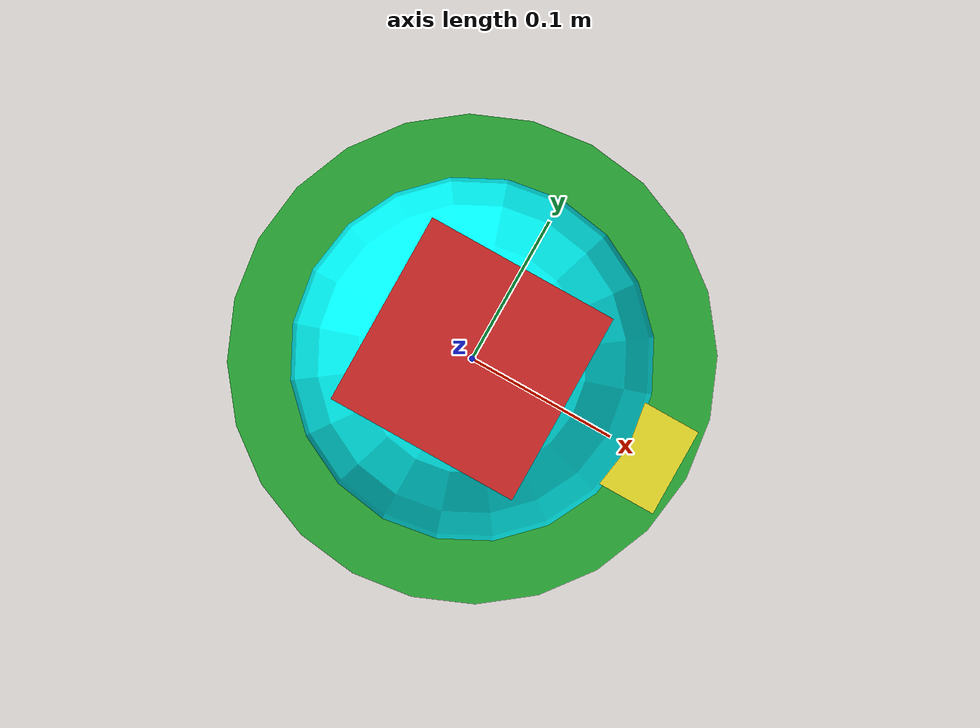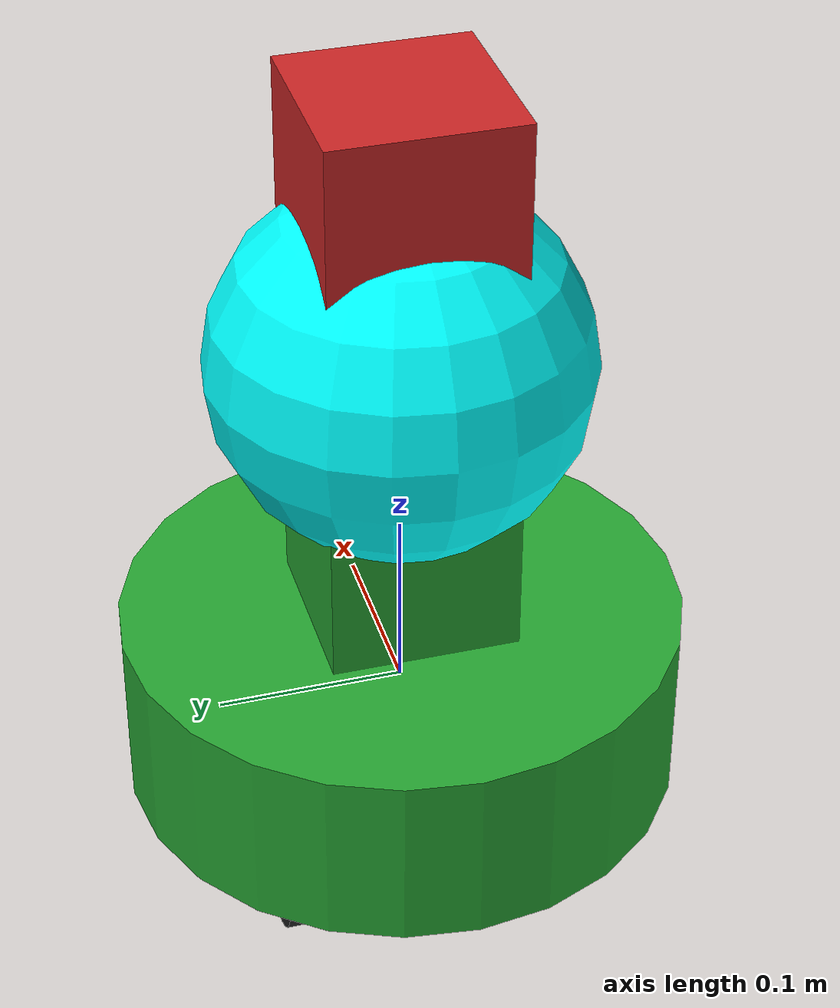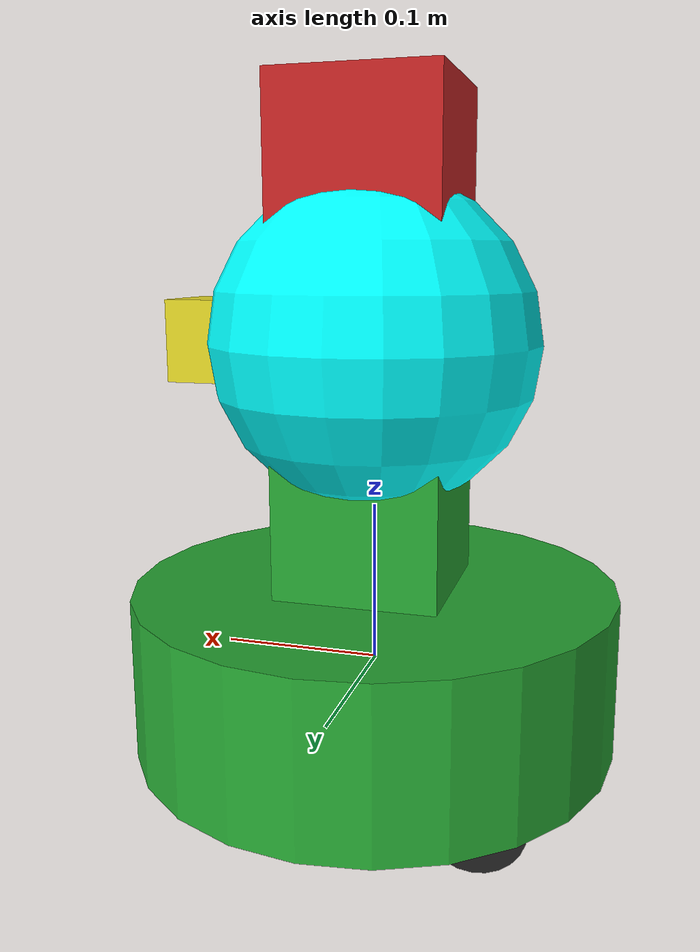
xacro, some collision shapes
<?xml version='1.0'?>

<robot name="sweeping_bot" xmlns:xacro="http://www.ros.org/wiki/xacro">
  <xacro:include filename="$(find robond_bot)/urdf/robond_bot.gazebo"/>
  <link name="robot_footprint"></link>

  <joint name="robot_footprint_joint" type="fixed">
    <origin xyz="0 0 0" rpy="0 0 0" />
    <parent link="robot_footprint"/>
    <child link="chassis" />
  </joint>

  <link name='chassis'>
    <pose>0 0 0.1 0 0 0</pose>

    <inertial>
      <mass value="25.0"/>
      <origin xyz="0.0 0 0" rpy=" 0 0 0"/>
      <inertia
          ixx="0.1" ixy="0" ixz="0"
          iyy="0.1" iyz="0"
          izz="0.1"
      />
    </inertial>

    <collision name='collision'>
      <origin xyz="0 0 0" rpy=" 0 0 0"/>
      <geometry>
        <cylinder radius="0.15" length="0.1"/>
      </geometry>
    </collision>

    <visual name='chassis_visual'>
      <origin xyz="0 0 0" rpy=" 0 0 0"/>
      <geometry>
        <cylinder radius="0.15" length="0.1"/>
      </geometry>
    </visual>

    <collision name='collision_2'>
      <origin xyz="0 0 0.1" rpy=" 0 0 0"/>
      <geometry>
        <box size="0.1 0.1 0.2"/>
      </geometry>
    </collision>

    <visual name='chassis_2_visual'>
      <origin xyz="0 0 0.1" rpy=" 0 0 0"/>
      <geometry>
        <box size="0.1 0.1 0.2"/>
      </geometry>
    </visual>

    <collision name='collision_3'>
      <origin xyz="0 0 0.2" rpy=" 0 0 0"/>
      <geometry>
        <sphere radius="0.1"/>
      </geometry>
    </collision>

    <visual name='chassis_3_visual'>
      <origin xyz="0 0 0.2" rpy=" 0 0 0"/>
      <geometry>
        <sphere radius="0.1"/>
      </geometry>
       <material name="Cyan">
          <color rgba="0 1.0 1.0 1.0"/>
        </material>
    </visual>

    <collision name='front_caster_collision'>
      <origin xyz="0.10 0 -0.05" rpy=" 0 0 0"/>
      <geometry>
        <sphere radius="0.03124"/>
      </geometry>
    </collision>

    <visual name='front_caster_visual'>
      <origin xyz="0.10 0 -0.05" rpy=" 0 0 0"/>
      <geometry>
        <sphere radius="0.03125"/>
      </geometry>
    </visual>
  </link>

  <link name='left_wheel'>

    <inertial>
      <mass value="10.0"/>
      <origin xyz="0.0 0 0" rpy=" 0 1.5707 1.5707"/>
      <inertia
          ixx="0.1" ixy="0" ixz="0"
          iyy="0.1" iyz="0"
          izz="0.1"
      />
    </inertial>

    <collision name='left_wheel_collision'>
      <origin xyz="0 0 0" rpy=" 0 1.5707 1.5707"/>
      <geometry>
        <cylinder length="0.02" radius="0.03"/>
      </geometry>
    </collision>

    <visual name='left_wheel_visual'>
      <origin xyz="0 0 0" rpy=" 0 1.5707 1.5707"/>
      <geometry>
        <cylinder length="0.02" radius="0.03"/>
      </geometry>
    </visual>
  </link>

  <link name='right_wheel'>

    <inertial>
      <mass value="10.0"/>
      <origin xyz="0.0 0 0" rpy=" 0 1.5707 1.5707"/>
      <inertia
          ixx="0.1" ixy="0" ixz="0"
          iyy="0.1" iyz="0"
          izz="0.1"
      />
    </inertial>

    <collision name='right_wheel_collision'>
      <origin xyz="0 0 0" rpy=" 0 1.5707 1.5707"/>
      <geometry>
        <cylinder length="0.02" radius="0.03"/>
      </geometry>
    </collision>

    <visual name='right_wheel_visual'>
      <origin xyz="0 0 0" rpy=" 0 1.5707 1.5707"/>
      <geometry>
        <cylinder length="0.02" radius="0.03"/>
      </geometry>
    </visual>
  </link>

  <joint type="continuous" name="left_wheel_hinge">
    <origin xyz="-0.08 0.08 -0.05" rpy="0 0 0"/>
    <child link="left_wheel"/>
    <parent link="chassis"/>
    <axis xyz="0 1 0" rpy="0 0 0"/>
    <limit effort="10000" velocity="1000"/>
    <joint_properties damping="1.0" friction="1.0"/>
  </joint>

  <joint type="continuous" name="right_wheel_hinge">
    <origin xyz="-0.08 -0.08 -0.05" rpy="0 0 0"/>
    <child link="right_wheel"/>
    <parent link="chassis"/>
    <axis xyz="0 1 0" rpy="0 0 0"/>
    <limit effort="10000" velocity="1000"/>
    <joint_properties damping="1.0" friction="1.0"/>
  </joint>

  <link name='camera'>

    <inertial>
      <mass value="0.1"/>
      <origin xyz="0 0 0" rpy=" 0 0 0"/>
      <inertia
          ixx="1e-6" ixy="0" ixz="0"
          iyy="1e-6" iyz="0"
          izz="1e-6"
      />
    </inertial>

    <collision name='camera_collision'>
      <origin xyz="0 0 0" rpy=" 0 0 0"/>
      <geometry>
        <box size="0.05 0.05 0.05"/>
      </geometry>
    </collision>

    <visual name='camera_visual'>
      <origin xyz="0 0 0" rpy=" 0 0 0"/>
      <geometry>
        <box size="0.05 0.05 0.05"/>
      </geometry>
    </visual>
  </link>

  <joint type="fixed" name="camera_joint">
    <origin xyz="0.1 0 0.2" rpy="0 0 0"/>
    <child link="camera"/>
    <parent link="chassis"/>
    <limit effort="10000" velocity="1000"/>
    <joint_properties damping="1.0" friction="1.0"/>
  </joint>

  <link name='hokuyo'>

    <inertial>
      <mass value="0.1"/>
      <origin xyz="0 0 0" rpy=" 0 0 0"/>
      <inertia
          ixx="1e-6" ixy="0" ixz="0"
          iyy="1e-6" iyz="0"
          izz="1e-6"
      />
    </inertial>

    <collision name='hokuyo_collision'>
      <origin xyz="0 0 0" rpy=" 0 0 0"/>
      <geometry>
        <box size="0.1 0.1 0.1"/>
      </geometry>
    </collision>

    <visual name='hokuyo_visual'>
      <origin xyz="0 0 0" rpy=" 0 0 0"/>
      <geometry>
        <mesh filename="package://robond_bot/meshes/hokuyo.dae"/>
      </geometry>
    </visual>
  </link>

  <joint type="fixed" name="hokuyo_joint">
    <origin xyz="0.0 0 0.3" rpy="0 0 0"/>
    <child link="hokuyo"/>
    <parent link="chassis"/>
    <limit effort="10000" velocity="1000"/>
    <joint_properties damping="1.0" friction="1.0"/>
  </joint>

</robot>
